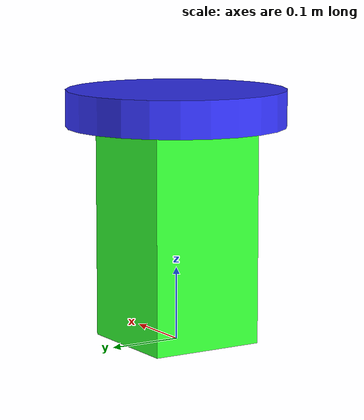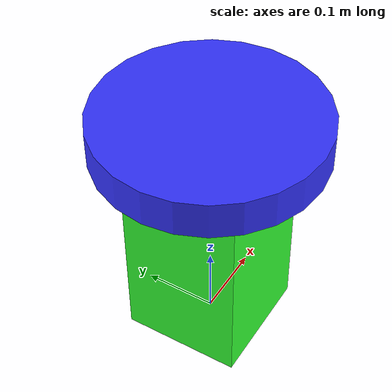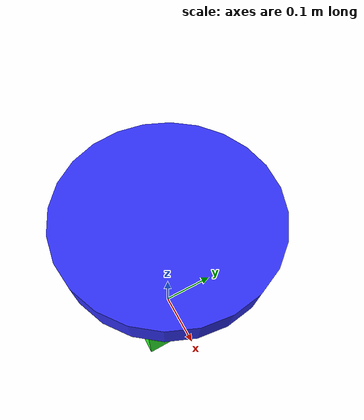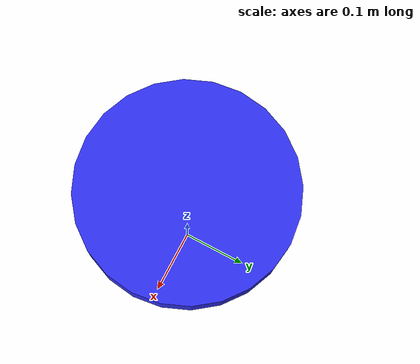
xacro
<?xml version="1.0"?>
<robot xmlns:xacro="http://www.ros.org/wiki/xacro"  name="demo_motor_simulation">

  <link name="map"></link>

  <xacro:property name="motor_mass" value="100"/>
  <xacro:property name="motor_size" value="0.16"/>
  <xacro:property name="motor_height" value="0.3"/>
  <link name="motor_link">
    <visual>
      <origin rpy="0 0 0" xyz="0 0 ${(motor_height/2)}" />
      <geometry>
        <box size="${motor_size} ${motor_size} ${motor_height}" />
      </geometry>
      <material name="Green">
        <color rgba="0.2 1.0 0.2 1.0"/>
      </material>
    </visual>
    <collision>
      <origin rpy="0 0 0 " xyz="0 0 ${(motor_height/2)}" />
      <geometry>
        <box size="${motor_size} ${motor_size} ${motor_height}" />
      </geometry>
    </collision>
    <inertial>
      <origin rpy="0 0 0 " xyz="0 0 ${(motor_height/2)}" />
      <geometry>
        <box size="${motor_size} ${motor_size} ${motor_height}" />
      </geometry>
      <mass value="${motor_mass}" />
      <inertia ixx="1.0265" ixy="0" ixz="0" iyy="1.3944999999999999" iyz="0" izz="2.1320000000000001" />
    </inertial>
  </link>

  <joint name="motor_joint" type="fixed">
    <parent link="map"/>
    <child link="motor_link"/>
    <origin rpy="0 0 0" xyz="0 0 0"/>
  </joint>

  <gazebo reference="motor_link">
    <material>Gazebo/Green</material>
  </gazebo>

  <!-- A wheel -->
  <xacro:property name="wheel_mass" value="3.5"/>
  <xacro:property name="wheel_radius" value="0.15"/>
  <xacro:property name="wheel_thick" value="0.05"/>
  <link name="wheel_link">
    <visual>
      <origin rpy="0 0 0" xyz="0 0 0"/>
      <geometry>
        <cylinder length="${wheel_thick}" radius="${wheel_radius}"/>
      </geometry>
      <material name="Blue">
        <color rgba="0.2 0.2 1.0 1.0"/>
      </material>
    </visual>
    <collision>
      <origin rpy="0 0 0" xyz="0 0 0"/>
      <geometry>
        <cylinder length="${wheel_thick}" radius="${wheel_radius}"/>
      </geometry>
    </collision>
    <inertial>
      <origin rpy="0 0 0" xyz="0 0 0"/>
      <geometry>
        <cylinder length="${wheel_thick}" radius="${wheel_radius}"/>
      </geometry>
      <mass value="${wheel_mass}"/>
      <inertia ixx="0.0267" ixy="0" ixz="0" iyy="0.0267" iyz="0" izz="0.0506"/>
    </inertial>
  </link>

  <joint name="wheel_joint" type="continuous">
    <parent link="motor_link"/>
    <child link="wheel_link"/>
    <origin rpy="0 0 0" xyz="0 0 ${motor_height + 0.02}"/>
    <axis xyz="0 0 1" />
  </joint>

  <gazebo reference="wheel_link">
    <material>Gazebo/Blue</material>
  </gazebo>

  <gazebo>
    <!-- Publish the position of the given joints as sensor_msgs/msg/JointState message to the topic /joint_states -->
    <plugin name="gazebo_ros_joint_state_publisher" filename="libgazebo_ros_joint_state_publisher.so">
      <update_rate>10</update_rate>
      <joint_name>wheel_joint</joint_name>
    </plugin>

    <!-- Reads a trajectory_msgs/msg/JointTrajectory from /set_joint_trajectory and uses that for a new joint state -->
    <plugin name="gazebo_ros_joint_pose_trajectory" filename="libgazebo_ros_joint_pose_trajectory.so">
      <update_rate>10</update_rate>
    </plugin>
  </gazebo>

</robot>
